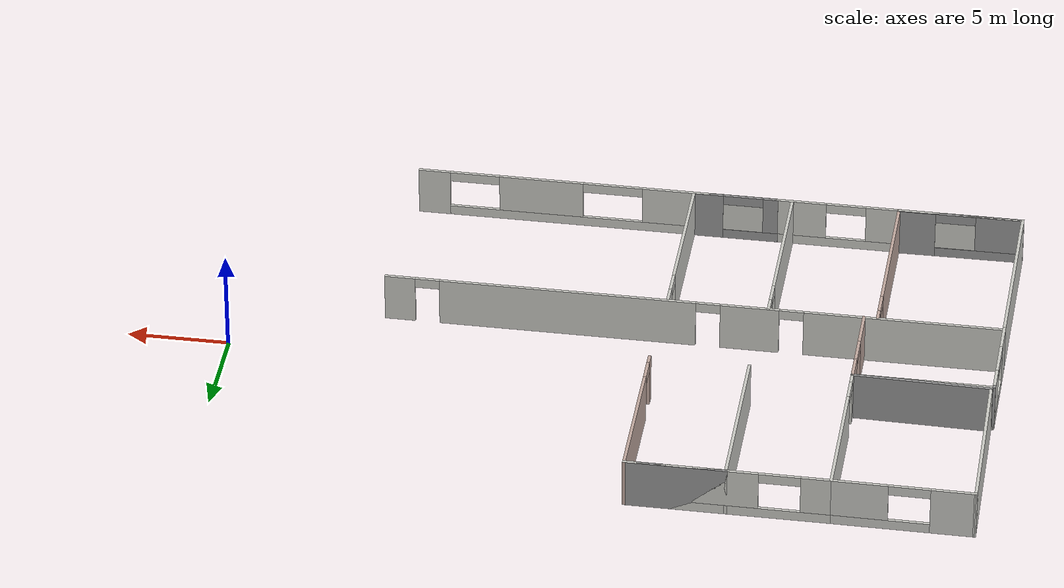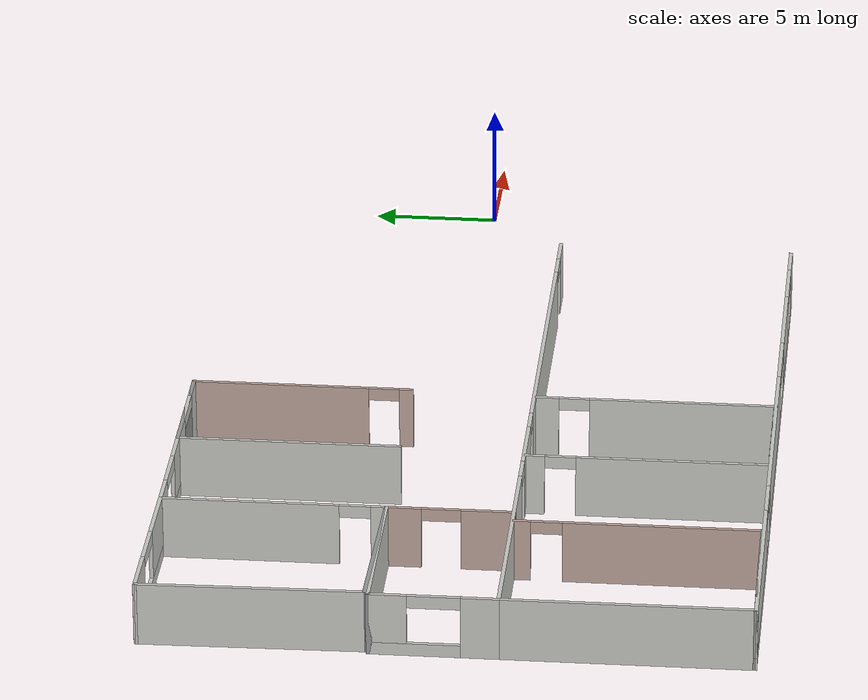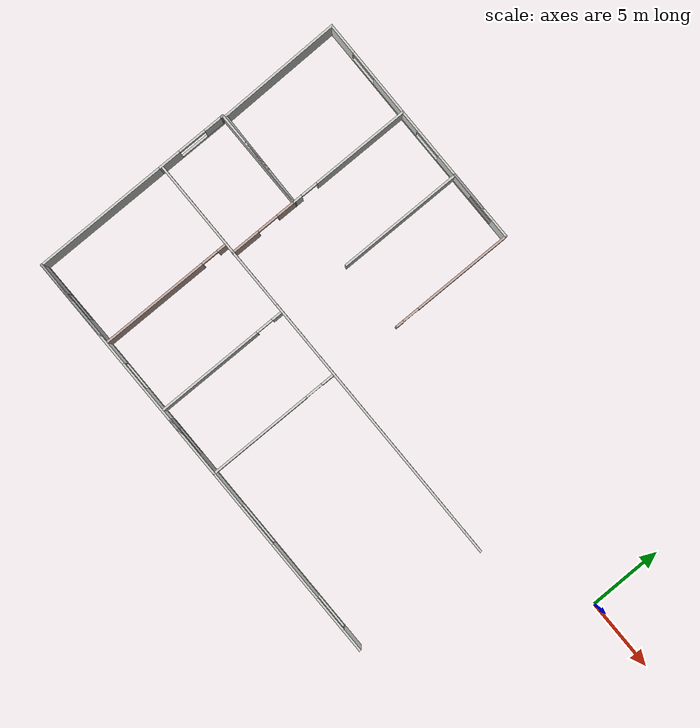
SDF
<sdf version="1.7">
 <model name="cps_lab_layout">
  <pose>-18.5957 3.28943 0 0 -0 0</pose>
  <link name="Wall_100">
   <pose>-12.2949 2.50022 0 0 -0 -1.5708</pose>
   <visual name="Wall_100_Visual_0">
    <pose>-0.931567 0 1.25 0 -0 0</pose>
    <geometry><box><size>6.88687 0.15 2.5</size></box></geometry>
    <material>
     <script><uri>file://media/materials/scripts/gazebo.material</uri><name>Gazebo/CeilingTiled</name></script>
     <ambient>0.760784 0.662745 0.627451 1</ambient>
    </material>
    <meta><layer>0</layer></meta>
   </visual>
   <collision name="Wall_100_Collision_0">
    <geometry><box><size>6.88687 0.15 2.5</size></box></geometry>
    <pose>-0.931567 0 1.25 0 -0 0</pose>
   </collision>
   <visual name="Wall_100_Visual_1">
    <pose>4.04343 0 1.25 0 -0 0</pose>
    <geometry><box><size>0.663135 0.15 2.5</size></box></geometry>
    <material>
     <script><uri>file://media/materials/scripts/gazebo.material</uri><name>Gazebo/CeilingTiled</name></script>
     <ambient>0.760784 0.662745 0.627451 1</ambient>
    </material>
    <meta><layer>0</layer></meta>
   </visual>
   <collision name="Wall_100_Collision_1">
    <geometry><box><size>0.663135 0.15 2.5</size></box></geometry>
    <pose>4.04343 0 1.25 0 -0 0</pose>
   </collision>
   <visual name="Wall_100_Visual_2">
    <pose>3.11186 0 2.25 0 -0 0</pose>
    <geometry><box><size>1.2 0.15 0.5</size></box></geometry>
    <material>
     <script><uri>file://media/materials/scripts/gazebo.material</uri><name>Gazebo/CeilingTiled</name></script>
     <ambient>0.760784 0.662745 0.627451 1</ambient>
    </material>
    <meta><layer>0</layer></meta>
   </visual>
   <collision name="Wall_100_Collision_2">
    <geometry><box><size>1.2 0.15 0.5</size></box></geometry>
    <pose>3.11186 0 2.25 0 -0 0</pose>
   </collision>
  </link>
  <link name="Wall_101">
   <collision name="Wall_101_Collision">
    <geometry><box><size>6.85618 0.15 2.5</size></box></geometry>
    <pose>0 0 1.25 0 -0 0</pose>
   </collision>
   <visual name="Wall_101_Visual">
    <pose>0 0 1.25 0 -0 0</pose>
    <geometry><box><size>6.85618 0.15 2.5</size></box></geometry>
    <material>
     <script><uri>file://media/materials/scripts/gazebo.material</uri><name>Gazebo/Grey</name></script>
     <ambient>1 1 1 1</ambient>
    </material>
    <meta><layer>0</layer></meta>
   </visual>
   <pose>-15.6474 -1.7341 0 0 -0 3.122</pose>
  </link>
  <link name="Wall_102">
   <collision name="Wall_102_Collision">
    <geometry><box><size>8.6581 0.15 2.5</size></box></geometry>
    <pose>0 0 1.25 0 -0 0</pose>
   </collision>
   <visual name="Wall_102_Visual">
    <pose>0 0 1.25 0 -0 0</pose>
    <geometry><box><size>8.6581 0.15 2.5</size></box></geometry>
    <material>
     <script><uri>file://media/materials/scripts/gazebo.material</uri><name>Gazebo/CeilingTiled</name></script>
     <ambient>0.760784 0.662745 0.627451 1</ambient>
    </material>
    <meta><layer>0</layer></meta>
   </visual>
   <pose>-19.0696 2.58506 0 0 -0 1.5872</pose>
  </link>
  <link name="Wall_103">
   <pose>-15.7172 6.81938 0 0 -0 -0.005598</pose>
   <visual name="Wall_103_Visual_0">
    <pose>-2.39687 0 1.25 0 -0 0</pose>
    <geometry><box><size>2.20111 0.15 2.5</size></box></geometry>
    <material>
     <script><uri>file://media/materials/scripts/gazebo.material</uri><name>Gazebo/CeilingTiled</name></script>
     <ambient>1 1 1 1</ambient>
    </material>
    <meta><layer>0</layer></meta>
   </visual>
   <collision name="Wall_103_Collision_0">
    <geometry><box><size>2.20111 0.15 2.5</size></box></geometry>
    <pose>-2.39687 0 1.25 0 -0 0</pose>
   </collision>
   <visual name="Wall_103_Visual_1">
    <pose>1.10056 0 0.25 0 -0 0</pose>
    <geometry><box><size>4.79374 0.15 0.5</size></box></geometry>
    <material>
     <script><uri>file://media/materials/scripts/gazebo.material</uri><name>Gazebo/CeilingTiled</name></script>
     <ambient>1 1 1 1</ambient>
    </material>
    <meta><layer>0</layer></meta>
   </visual>
   <collision name="Wall_103_Collision_1">
    <geometry><box><size>4.79374 0.15 0.5</size></box></geometry>
    <pose>1.10056 0 0.25 0 -0 0</pose>
   </collision>
   <visual name="Wall_103_Visual_2">
    <pose>2.10056 0 1.5 0 -0 0</pose>
    <geometry><box><size>2.79374 0.15 2</size></box></geometry>
    <material>
     <script><uri>file://media/materials/scripts/gazebo.material</uri><name>Gazebo/CeilingTiled</name></script>
     <ambient>1 1 1 1</ambient>
    </material>
    <meta><layer>0</layer></meta>
   </visual>
   <collision name="Wall_103_Collision_2">
    <geometry><box><size>2.79374 0.15 2</size></box></geometry>
    <pose>2.10056 0 1.5 0 -0 0</pose>
   </collision>
   <visual name="Wall_103_Visual_3">
    <pose>-0.296315 0 2.25 0 -0 0</pose>
    <geometry><box><size>2 0.15 0.5</size></box></geometry>
    <material>
     <script><uri>file://media/materials/scripts/gazebo.material</uri><name>Gazebo/CeilingTiled</name></script>
     <ambient>1 1 1 1</ambient>
    </material>
    <meta><layer>0</layer></meta>
   </visual>
   <collision name="Wall_103_Collision_3">
    <geometry><box><size>2 0.15 0.5</size></box></geometry>
    <pose>-0.296315 0 2.25 0 -0 0</pose>
   </collision>
  </link>
  <link name="Wall_104">
   <pose>-12.2949 -4.22478 0 0 -0 -1.5708</pose>
   <visual name="Wall_104_Visual_0">
    <pose>-1.79575 0 1.25 0 -0 0</pose>
    <geometry><box><size>1.40849 0.15 2.5</size></box></geometry>
    <material>
     <script><uri>file://media/materials/scripts/gazebo.material</uri><name>Gazebo/Grey</name></script>
     <ambient>0.760784 0.662745 0.627451 1</ambient>
    </material>
    <meta><layer>0</layer></meta>
   </visual>
   <collision name="Wall_104_Collision_0">
    <geometry><box><size>1.40849 0.15 2.5</size></box></geometry>
    <pose>-1.79575 0 1.25 0 -0 0</pose>
   </collision>
   <visual name="Wall_104_Visual_1">
    <pose>1.45425 0 1.25 0 -0 0</pose>
    <geometry><box><size>2.09151 0.15 2.5</size></box></geometry>
    <material>
     <script><uri>file://media/materials/scripts/gazebo.material</uri><name>Gazebo/Grey</name></script>
     <ambient>0.760784 0.662745 0.627451 1</ambient>
    </material>
    <meta><layer>0</layer></meta>
   </visual>
   <collision name="Wall_104_Collision_1">
    <geometry><box><size>2.09151 0.15 2.5</size></box></geometry>
    <pose>1.45425 0 1.25 0 -0 0</pose>
   </collision>
   <visual name="Wall_104_Visual_2">
    <pose>-0.34151 0 2.25 0 -0 0</pose>
    <geometry><box><size>1.5 0.15 0.5</size></box></geometry>
    <material>
     <script><uri>file://media/materials/scripts/gazebo.material</uri><name>Gazebo/Grey</name></script>
     <ambient>0.760784 0.662745 0.627451 1</ambient>
    </material>
    <meta><layer>0</layer></meta>
   </visual>
   <collision name="Wall_104_Collision_2">
    <geometry><box><size>1.5 0.15 0.5</size></box></geometry>
    <pose>-0.34151 0 2.25 0 -0 0</pose>
   </collision>
  </link>
  <link name="Wall_106">
   <pose>-19.1333 -4.32604 0 0 -0 1.5708</pose>
   <visual name="Wall_106_Visual_0">
    <pose>-1.70451 0 1.25 0 -0 0</pose>
    <geometry><box><size>1.59098 0.15 2.5</size></box></geometry>
    <material>
     <script><uri>file://media/materials/scripts/gazebo.material</uri><name>Gazebo/CeilingTiled</name></script>
     <ambient>0.760784 0.662745 0.627451 1</ambient>
    </material>
    <meta><layer>0</layer></meta>
   </visual>
   <collision name="Wall_106_Collision_0">
    <geometry><box><size>1.59098 0.15 2.5</size></box></geometry>
    <pose>-1.70451 0 1.25 0 -0 0</pose>
   </collision>
   <visual name="Wall_106_Visual_1">
    <pose>0.795491 0 0.25 0 -0 0</pose>
    <geometry><box><size>3.40902 0.15 0.5</size></box></geometry>
    <material>
     <script><uri>file://media/materials/scripts/gazebo.material</uri><name>Gazebo/CeilingTiled</name></script>
     <ambient>0.760784 0.662745 0.627451 1</ambient>
    </material>
    <meta><layer>0</layer></meta>
   </visual>
   <collision name="Wall_106_Collision_1">
    <geometry><box><size>3.40902 0.15 0.5</size></box></geometry>
    <pose>0.795491 0 0.25 0 -0 0</pose>
   </collision>
   <visual name="Wall_106_Visual_2">
    <pose>1.79549 0 1.5 0 -0 0</pose>
    <geometry><box><size>1.40902 0.15 2</size></box></geometry>
    <material>
     <script><uri>file://media/materials/scripts/gazebo.material</uri><name>Gazebo/CeilingTiled</name></script>
     <ambient>0.760784 0.662745 0.627451 1</ambient>
    </material>
    <meta><layer>0</layer></meta>
   </visual>
   <collision name="Wall_106_Collision_2">
    <geometry><box><size>1.40902 0.15 2</size></box></geometry>
    <pose>1.79549 0 1.5 0 -0 0</pose>
   </collision>
   <visual name="Wall_106_Visual_3">
    <pose>0.090982 0 2.25 0 -0 0</pose>
    <geometry><box><size>2 0.15 0.5</size></box></geometry>
    <material>
     <script><uri>file://media/materials/scripts/gazebo.material</uri><name>Gazebo/CeilingTiled</name></script>
     <ambient>0.760784 0.662745 0.627451 1</ambient>
    </material>
    <meta><layer>0</layer></meta>
   </visual>
   <collision name="Wall_106_Collision_3">
    <geometry><box><size>2 0.15 0.5</size></box></geometry>
    <pose>0.090982 0 2.25 0 -0 0</pose>
   </collision>
  </link>
  <link name="Wall_107">
   <collision name="Wall_107_Collision">
    <geometry><box><size>0.15 0.15 2.5</size></box></geometry>
    <pose>0 0 1.25 0 -0 0</pose>
   </collision>
   <visual name="Wall_107_Visual">
    <pose>0 0 1.25 0 -0 0</pose>
    <geometry><box><size>0.15 0.15 2.5</size></box></geometry>
    <material>
     <script><uri>file://media/materials/scripts/gazebo.material</uri><name>Gazebo/Grey</name></script>
     <ambient>1 1 1 1</ambient>
    </material>
    <meta><layer>0</layer></meta>
   </visual>
   <pose>-19.1333 -1.90104 0 0 -0 0</pose>
  </link>
  <link name="Wall_108">
   <collision name="Wall_108_Collision">
    <geometry><box><size>0.15 0.15 2.5</size></box></geometry>
    <pose>0 0 1.25 0 -0 0</pose>
   </collision>
   <visual name="Wall_108_Visual">
    <pose>0 0 1.25 0 -0 0</pose>
    <geometry><box><size>0.15 0.15 2.5</size></box></geometry>
    <material>
     <script><uri>file://media/materials/scripts/gazebo.material</uri><name>Gazebo/Grey</name></script>
     <ambient>1 1 1 1</ambient>
    </material>
    <meta><layer>0</layer></meta>
   </visual>
   <pose>-19.1333 -1.90104 0 0 -0 0</pose>
  </link>
  <link name="Wall_109">
   <collision name="Wall_109_Collision">
    <geometry><box><size>0.25 0.15 2.5</size></box></geometry>
    <pose>0 0 1.25 0 -0 0</pose>
   </collision>
   <visual name="Wall_109_Visual">
    <pose>0 0 1.25 0 -0 0</pose>
    <geometry><box><size>0.25 0.15 2.5</size></box></geometry>
    <material>
     <script><uri>file://media/materials/scripts/gazebo.material</uri><name>Gazebo/Grey</name></script>
     <ambient>1 1 1 1</ambient>
    </material>
    <meta><layer>0</layer></meta>
   </visual>
   <pose>-19.1333 -1.85104 0 0 -0 1.5708</pose>
  </link>
  <link name="Wall_110">
   <collision name="Wall_110_Collision">
    <geometry><box><size>6.98839 0.15 2.5</size></box></geometry>
    <pose>0 0 1.25 0 -0 0</pose>
   </collision>
   <visual name="Wall_110_Visual">
    <pose>0 0 1.25 0 -0 0</pose>
    <geometry><box><size>6.98839 0.15 2.5</size></box></geometry>
    <material>
     <script><uri>file://media/materials/scripts/gazebo.material</uri><name>Gazebo/CeilingTiled</name></script>
     <ambient>0.760784 0.662745 0.627451 1</ambient>
    </material>
    <meta><layer>0</layer></meta>
   </visual>
   <pose>-15.7141 -1.80041 0 0 -0 0.000184</pose>
  </link>
  <link name="Wall_78">
   <pose>-3.8734 -6.63637 0 0 -0 3.14159</pose>
   <visual name="Wall_78_Visual_0">
    <pose>-14.4896 0 1.25 0 -0 0</pose>
    <geometry><box><size>1.52082 0.15 2.5</size></box></geometry>
    <material>
     <script><uri>file://media/materials/scripts/gazebo.material</uri><name>Gazebo/CeilingTiled</name></script>
     <ambient>0.760784 0.662745 0.627451 1</ambient>
    </material>
    <meta><layer>0</layer></meta>
   </visual>
   <collision name="Wall_78_Collision_0">
    <geometry><box><size>1.52082 0.15 2.5</size></box></geometry>
    <pose>-14.4896 0 1.25 0 -0 0</pose>
   </collision>
   <visual name="Wall_78_Visual_1">
    <pose>-6.18137 0 1.25 0 -0 0</pose>
    <geometry><box><size>12.6956 0.15 2.5</size></box></geometry>
    <material>
     <script><uri>file://media/materials/scripts/gazebo.material</uri><name>Gazebo/CeilingTiled</name></script>
     <ambient>0.760784 0.662745 0.627451 1</ambient>
    </material>
    <meta><layer>0</layer></meta>
   </visual>
   <collision name="Wall_78_Collision_1">
    <geometry><box><size>12.6956 0.15 2.5</size></box></geometry>
    <pose>-6.18137 0 1.25 0 -0 0</pose>
   </collision>
   <visual name="Wall_78_Visual_2">
    <pose>2.81725 0 1.25 0 -0 0</pose>
    <geometry><box><size>2.90164 0.15 2.5</size></box></geometry>
    <material>
     <script><uri>file://media/materials/scripts/gazebo.material</uri><name>Gazebo/CeilingTiled</name></script>
     <ambient>0.760784 0.662745 0.627451 1</ambient>
    </material>
    <meta><layer>0</layer></meta>
   </visual>
   <collision name="Wall_78_Collision_2">
    <geometry><box><size>2.90164 0.15 2.5</size></box></geometry>
    <pose>2.81725 0 1.25 0 -0 0</pose>
   </collision>
   <visual name="Wall_78_Visual_3">
    <pose>10.359 0 1.25 0 -0 0</pose>
    <geometry><box><size>9.78192 0.15 2.5</size></box></geometry>
    <material>
     <script><uri>file://media/materials/scripts/gazebo.material</uri><name>Gazebo/CeilingTiled</name></script>
     <ambient>0.760784 0.662745 0.627451 1</ambient>
    </material>
    <meta><layer>0</layer></meta>
   </visual>
   <collision name="Wall_78_Collision_3">
    <geometry><box><size>9.78192 0.15 2.5</size></box></geometry>
    <pose>10.359 0 1.25 0 -0 0</pose>
   </collision>
   <visual name="Wall_78_Visual_4">
    <pose>-13.1292 0 2.25 0 -0 0</pose>
    <geometry><box><size>1.2 0.15 0.5</size></box></geometry>
    <material>
     <script><uri>file://media/materials/scripts/gazebo.material</uri><name>Gazebo/CeilingTiled</name></script>
     <ambient>0.760784 0.662745 0.627451 1</ambient>
    </material>
    <meta><layer>0</layer></meta>
   </visual>
   <collision name="Wall_78_Collision_4">
    <geometry><box><size>1.2 0.15 0.5</size></box></geometry>
    <pose>-13.1292 0 2.25 0 -0 0</pose>
   </collision>
   <visual name="Wall_78_Visual_5">
    <pose>0.766434 0 2.25 0 -0 0</pose>
    <geometry><box><size>1.2 0.15 0.5</size></box></geometry>
    <material>
     <script><uri>file://media/materials/scripts/gazebo.material</uri><name>Gazebo/CeilingTiled</name></script>
     <ambient>0.760784 0.662745 0.627451 1</ambient>
    </material>
    <meta><layer>0</layer></meta>
   </visual>
   <collision name="Wall_78_Collision_5">
    <geometry><box><size>1.2 0.15 0.5</size></box></geometry>
    <pose>0.766434 0 2.25 0 -0 0</pose>
   </collision>
   <visual name="Wall_78_Visual_6">
    <pose>4.86808 0 2.25 0 -0 0</pose>
    <geometry><box><size>1.2 0.15 0.5</size></box></geometry>
    <material>
     <script><uri>file://media/materials/scripts/gazebo.material</uri><name>Gazebo/CeilingTiled</name></script>
     <ambient>0.760784 0.662745 0.627451 1</ambient>
    </material>
    <meta><layer>0</layer></meta>
   </visual>
   <collision name="Wall_78_Collision_6">
    <geometry><box><size>1.2 0.15 0.5</size></box></geometry>
    <pose>4.86808 0 2.25 0 -0 0</pose>
   </collision>
  </link>
  <link name="Wall_79">
   <pose>-3.95831 -16.101 0 0 -0 3.14159</pose>
   <visual name="Wall_79_Visual_0">
    <pose>-14.447 0 1.25 0 -0 0</pose>
    <geometry><box><size>1.606 0.15 2.5</size></box></geometry>
    <material>
     <script><uri>file://media/materials/scripts/gazebo.material</uri><name>Gazebo/CeilingTiled</name></script>
     <ambient>0.760784 0.662745 0.627451 1</ambient>
    </material>
    <meta><layer>0</layer></meta>
   </visual>
   <collision name="Wall_79_Collision_0">
    <geometry><box><size>1.606 0.15 2.5</size></box></geometry>
    <pose>-14.447 0 1.25 0 -0 0</pose>
   </collision>
   <visual name="Wall_79_Visual_1">
    <pose>0.803 0 0.25 0 -0 0</pose>
    <geometry><box><size>28.894 0.15 0.5</size></box></geometry>
    <material>
     <script><uri>file://media/materials/scripts/gazebo.material</uri><name>Gazebo/CeilingTiled</name></script>
     <ambient>0.760784 0.662745 0.627451 1</ambient>
    </material>
    <meta><layer>0</layer></meta>
   </visual>
   <collision name="Wall_79_Collision_1">
    <geometry><box><size>28.894 0.15 0.5</size></box></geometry>
    <pose>0.803 0 0.25 0 -0 0</pose>
   </collision>
   <visual name="Wall_79_Visual_2">
    <pose>-9.01853 0 1.5 0 -0 0</pose>
    <geometry><box><size>4.25094 0.15 2</size></box></geometry>
    <material>
     <script><uri>file://media/materials/scripts/gazebo.material</uri><name>Gazebo/CeilingTiled</name></script>
     <ambient>0.760784 0.662745 0.627451 1</ambient>
    </material>
    <meta><layer>0</layer></meta>
   </visual>
   <collision name="Wall_79_Collision_2">
    <geometry><box><size>4.25094 0.15 2</size></box></geometry>
    <pose>-9.01853 0 1.5 0 -0 0</pose>
   </collision>
   <visual name="Wall_79_Visual_3">
    <pose>0.731796 0 1.5 0 -0 0</pose>
    <geometry><box><size>9.24971 0.15 2</size></box></geometry>
    <material>
     <script><uri>file://media/materials/scripts/gazebo.material</uri><name>Gazebo/CeilingTiled</name></script>
     <ambient>0.760784 0.662745 0.627451 1</ambient>
    </material>
    <meta><layer>0</layer></meta>
   </visual>
   <collision name="Wall_79_Collision_3">
    <geometry><box><size>9.24971 0.15 2</size></box></geometry>
    <pose>0.731796 0 1.5 0 -0 0</pose>
   </collision>
   <visual name="Wall_79_Visual_4">
    <pose>11.3033 0 1.5 0 -0 0</pose>
    <geometry><box><size>7.89335 0.15 2</size></box></geometry>
    <material>
     <script><uri>file://media/materials/scripts/gazebo.material</uri><name>Gazebo/CeilingTiled</name></script>
     <ambient>0.760784 0.662745 0.627451 1</ambient>
    </material>
    <meta><layer>0</layer></meta>
   </visual>
   <collision name="Wall_79_Collision_4">
    <geometry><box><size>7.89335 0.15 2</size></box></geometry>
    <pose>11.3033 0 1.5 0 -0 0</pose>
   </collision>
   <visual name="Wall_79_Visual_5">
    <pose>-12.394 0 2.25 0 -0 0</pose>
    <geometry><box><size>2.5 0.15 0.5</size></box></geometry>
    <material>
     <script><uri>file://media/materials/scripts/gazebo.material</uri><name>Gazebo/CeilingTiled</name></script>
     <ambient>0.760784 0.662745 0.627451 1</ambient>
    </material>
    <meta><layer>0</layer></meta>
   </visual>
   <collision name="Wall_79_Collision_5">
    <geometry><box><size>2.5 0.15 0.5</size></box></geometry>
    <pose>-12.394 0 2.25 0 -0 0</pose>
   </collision>
   <visual name="Wall_79_Visual_6">
    <pose>-5.39306 0 2.25 0 -0 0</pose>
    <geometry><box><size>3 0.15 0.5</size></box></geometry>
    <material>
     <script><uri>file://media/materials/scripts/gazebo.material</uri><name>Gazebo/CeilingTiled</name></script>
     <ambient>0.760784 0.662745 0.627451 1</ambient>
    </material>
    <meta><layer>0</layer></meta>
   </visual>
   <collision name="Wall_79_Collision_6">
    <geometry><box><size>3 0.15 0.5</size></box></geometry>
    <pose>-5.39306 0 2.25 0 -0 0</pose>
   </collision>
   <visual name="Wall_79_Visual_7">
    <pose>6.35665 0 2.25 0 -0 0</pose>
    <geometry><box><size>2 0.15 0.5</size></box></geometry>
    <material>
     <script><uri>file://media/materials/scripts/gazebo.material</uri><name>Gazebo/CeilingTiled</name></script>
     <ambient>0.760784 0.662745 0.627451 1</ambient>
    </material>
    <meta><layer>0</layer></meta>
   </visual>
   <collision name="Wall_79_Collision_7">
    <geometry><box><size>2 0.15 0.5</size></box></geometry>
    <pose>6.35665 0 2.25 0 -0 0</pose>
   </collision>
  </link>
  <link name="Wall_83">
   <pose>-2.64934 -11.4153 0 0 -0 -1.5708</pose>
   <visual name="Wall_83_Visual_0">
    <pose>-4.27752 0 1.25 0 -0 0</pose>
    <geometry><box><size>0.944957 0.15 2.5</size></box></geometry>
    <material>
     <script><uri>file://media/materials/scripts/gazebo.material</uri><name>Gazebo/CeilingTiled</name></script>
     <ambient>0.760784 0.662745 0.627451 1</ambient>
    </material>
    <meta><layer>0</layer></meta>
   </visual>
   <collision name="Wall_83_Collision_0">
    <geometry><box><size>0.944957 0.15 2.5</size></box></geometry>
    <pose>-4.27752 0 1.25 0 -0 0</pose>
   </collision>
   <visual name="Wall_83_Visual_1">
    <pose>1.07248 0 1.25 0 -0 0</pose>
    <geometry><box><size>7.35504 0.15 2.5</size></box></geometry>
    <material>
     <script><uri>file://media/materials/scripts/gazebo.material</uri><name>Gazebo/CeilingTiled</name></script>
     <ambient>0.760784 0.662745 0.627451 1</ambient>
    </material>
    <meta><layer>0</layer></meta>
   </visual>
   <collision name="Wall_83_Collision_1">
    <geometry><box><size>7.35504 0.15 2.5</size></box></geometry>
    <pose>1.07248 0 1.25 0 -0 0</pose>
   </collision>
   <visual name="Wall_83_Visual_2">
    <pose>-3.20504 0 2.25 0 -0 0</pose>
    <geometry><box><size>1.2 0.15 0.5</size></box></geometry>
    <material>
     <script><uri>file://media/materials/scripts/gazebo.material</uri><name>Gazebo/CeilingTiled</name></script>
     <ambient>0.760784 0.662745 0.627451 1</ambient>
    </material>
    <meta><layer>0</layer></meta>
   </visual>
   <collision name="Wall_83_Collision_2">
    <geometry><box><size>1.2 0.15 0.5</size></box></geometry>
    <pose>-3.20504 0 2.25 0 -0 0</pose>
   </collision>
  </link>
  <link name="Wall_84">
   <pose>-4.73452 -16.0903 0 0 -0 3.14159</pose>
   <visual name="Wall_84_Visual_0">
    <pose>-1.37569 0 1.25 0 -0 0</pose>
    <geometry><box><size>1.56897 0.15 2.5</size></box></geometry>
    <material>
     <script><uri>file://media/materials/scripts/gazebo.material</uri><name>Gazebo/Grey</name></script>
     <ambient>1 1 1 1</ambient>
    </material>
    <meta><layer>0</layer></meta>
   </visual>
   <collision name="Wall_84_Collision_0">
    <geometry><box><size>1.56897 0.15 2.5</size></box></geometry>
    <pose>-1.37569 0 1.25 0 -0 0</pose>
   </collision>
   <visual name="Wall_84_Visual_1">
    <pose>0.784487 0 0.25 0 -0 0</pose>
    <geometry><box><size>2.75138 0.15 0.5</size></box></geometry>
    <material>
     <script><uri>file://media/materials/scripts/gazebo.material</uri><name>Gazebo/Grey</name></script>
     <ambient>1 1 1 1</ambient>
    </material>
    <meta><layer>0</layer></meta>
   </visual>
   <collision name="Wall_84_Collision_1">
    <geometry><box><size>2.75138 0.15 0.5</size></box></geometry>
    <pose>0.784487 0 0.25 0 -0 0</pose>
   </collision>
   <visual name="Wall_84_Visual_2">
    <pose>1.78449 0 1.5 0 -0 0</pose>
    <geometry><box><size>0.751384 0.15 2</size></box></geometry>
    <material>
     <script><uri>file://media/materials/scripts/gazebo.material</uri><name>Gazebo/Grey</name></script>
     <ambient>1 1 1 1</ambient>
    </material>
    <meta><layer>0</layer></meta>
   </visual>
   <collision name="Wall_84_Collision_2">
    <geometry><box><size>0.751384 0.15 2</size></box></geometry>
    <pose>1.78449 0 1.5 0 -0 0</pose>
   </collision>
   <visual name="Wall_84_Visual_3">
    <pose>0.408794 0 2.25 0 -0 0</pose>
    <geometry><box><size>2 0.15 0.5</size></box></geometry>
    <material>
     <script><uri>file://media/materials/scripts/gazebo.material</uri><name>Gazebo/Grey</name></script>
     <ambient>1 1 1 1</ambient>
    </material>
    <meta><layer>0</layer></meta>
   </visual>
   <collision name="Wall_84_Collision_3">
    <geometry><box><size>2 0.15 0.5</size></box></geometry>
    <pose>0.408794 0 2.25 0 -0 0</pose>
   </collision>
  </link>
  <link name="Wall_85">
   <pose>-7.6062 -11.3801 0 0 -0 1.5708</pose>
   <visual name="Wall_85_Visual_0">
    <pose>-1.00212 0 1.25 0 -0 0</pose>
    <geometry><box><size>7.49576 0.15 2.5</size></box></geometry>
    <material>
     <script><uri>file://media/materials/scripts/gazebo.material</uri><name>Gazebo/CeilingTiled</name></script>
     <ambient>0.760784 0.662745 0.627451 1</ambient>
    </material>
    <meta><layer>0</layer></meta>
   </visual>
   <collision name="Wall_85_Collision_0">
    <geometry><box><size>7.49576 0.15 2.5</size></box></geometry>
    <pose>-1.00212 0 1.25 0 -0 0</pose>
   </collision>
   <visual name="Wall_85_Visual_1">
    <pose>4.34788 0 1.25 0 -0 0</pose>
    <geometry><box><size>0.804242 0.15 2.5</size></box></geometry>
    <material>
     <script><uri>file://media/materials/scripts/gazebo.material</uri><name>Gazebo/CeilingTiled</name></script>
     <ambient>0.760784 0.662745 0.627451 1</ambient>
    </material>
    <meta><layer>0</layer></meta>
   </visual>
   <collision name="Wall_85_Collision_1">
    <geometry><box><size>0.804242 0.15 2.5</size></box></geometry>
    <pose>4.34788 0 1.25 0 -0 0</pose>
   </collision>
   <visual name="Wall_85_Visual_2">
    <pose>3.34576 0 2.25 0 -0 0</pose>
    <geometry><box><size>1.2 0.15 0.5</size></box></geometry>
    <material>
     <script><uri>file://media/materials/scripts/gazebo.material</uri><name>Gazebo/CeilingTiled</name></script>
     <ambient>0.760784 0.662745 0.627451 1</ambient>
    </material>
    <meta><layer>0</layer></meta>
   </visual>
   <collision name="Wall_85_Collision_2">
    <geometry><box><size>1.2 0.15 0.5</size></box></geometry>
    <pose>3.34576 0 2.25 0 -0 0</pose>
   </collision>
  </link>
  <link name="Wall_87">
   <pose>-12.9562 -11.3801 0 0 -0 -1.5708</pose>
   <visual name="Wall_87_Visual_0">
    <pose>-4.40065 0 1.25 0 -0 0</pose>
    <geometry><box><size>0.698706 0.15 2.5</size></box></geometry>
    <material>
     <script><uri>file://media/materials/scripts/gazebo.material</uri><name>Gazebo/Grey</name></script>
     <ambient>0.760784 0.662745 0.627451 1</ambient>
    </material>
    <meta><layer>0</layer></meta>
   </visual>
   <collision name="Wall_87_Collision_0">
    <geometry><box><size>0.698706 0.15 2.5</size></box></geometry>
    <pose>-4.40065 0 1.25 0 -0 0</pose>
   </collision>
   <visual name="Wall_87_Visual_1">
    <pose>0.949353 0 1.25 0 -0 0</pose>
    <geometry><box><size>7.60129 0.15 2.5</size></box></geometry>
    <material>
     <script><uri>file://media/materials/scripts/gazebo.material</uri><name>Gazebo/Grey</name></script>
     <ambient>0.760784 0.662745 0.627451 1</ambient>
    </material>
    <meta><layer>0</layer></meta>
   </visual>
   <collision name="Wall_87_Collision_1">
    <geometry><box><size>7.60129 0.15 2.5</size></box></geometry>
    <pose>0.949353 0 1.25 0 -0 0</pose>
   </collision>
   <visual name="Wall_87_Visual_2">
    <pose>-3.45129 0 2.25 0 -0 0</pose>
    <geometry><box><size>1.2 0.15 0.5</size></box></geometry>
    <material>
     <script><uri>file://media/materials/scripts/gazebo.material</uri><name>Gazebo/Grey</name></script>
     <ambient>0.760784 0.662745 0.627451 1</ambient>
    </material>
    <meta><layer>0</layer></meta>
   </visual>
   <collision name="Wall_87_Collision_2">
    <geometry><box><size>1.2 0.15 0.5</size></box></geometry>
    <pose>-3.45129 0 2.25 0 -0 0</pose>
   </collision>
  </link>
  <link name="Wall_88">
   <pose>-16.0448 -16.0781 0 0 -0 -3.13416</pose>
   <visual name="Wall_88_Visual_0">
    <pose>-2.20299 0 1.25 0 -0 0</pose>
    <geometry><box><size>1.92131 0.15 2.5</size></box></geometry>
    <material>
     <script><uri>file://media/materials/scripts/gazebo.material</uri><name>Gazebo/Grey</name></script>
     <ambient>1 1 1 1</ambient>
    </material>
    <meta><layer>0</layer></meta>
   </visual>
   <collision name="Wall_88_Collision_0">
    <geometry><box><size>1.92131 0.15 2.5</size></box></geometry>
    <pose>-2.20299 0 1.25 0 -0 0</pose>
   </collision>
   <visual name="Wall_88_Visual_1">
    <pose>0.960656 0 0.25 0 -0 0</pose>
    <geometry><box><size>4.40597 0.15 0.5</size></box></geometry>
    <material>
     <script><uri>file://media/materials/scripts/gazebo.material</uri><name>Gazebo/Grey</name></script>
     <ambient>1 1 1 1</ambient>
    </material>
    <meta><layer>0</layer></meta>
   </visual>
   <collision name="Wall_88_Collision_1">
    <geometry><box><size>4.40597 0.15 0.5</size></box></geometry>
    <pose>0.960656 0 0.25 0 -0 0</pose>
   </collision>
   <visual name="Wall_88_Visual_2">
    <pose>1.96066 0 1.5 0 -0 0</pose>
    <geometry><box><size>2.40598 0.15 2</size></box></geometry>
    <material>
     <script><uri>file://media/materials/scripts/gazebo.material</uri><name>Gazebo/Grey</name></script>
     <ambient>1 1 1 1</ambient>
    </material>
    <meta><layer>0</layer></meta>
   </visual>
   <collision name="Wall_88_Collision_2">
    <geometry><box><size>2.40598 0.15 2</size></box></geometry>
    <pose>1.96066 0 1.5 0 -0 0</pose>
   </collision>
   <visual name="Wall_88_Visual_3">
    <pose>-0.242332 0 2.25 0 -0 0</pose>
    <geometry><box><size>2 0.15 0.5</size></box></geometry>
    <material>
     <script><uri>file://media/materials/scripts/gazebo.material</uri><name>Gazebo/Grey</name></script>
     <ambient>1 1 1 1</ambient>
    </material>
    <meta><layer>0</layer></meta>
   </visual>
   <collision name="Wall_88_Collision_3">
    <geometry><box><size>2 0.15 0.5</size></box></geometry>
    <pose>-0.242332 0 2.25 0 -0 0</pose>
   </collision>
  </link>
  <link name="Wall_89">
   <collision name="Wall_89_Collision">
    <geometry><box><size>9.5 0.15 2.5</size></box></geometry>
    <pose>0 0 1.25 0 -0 0</pose>
   </collision>
   <visual name="Wall_89_Visual">
    <pose>0 0 1.25 0 -0 0</pose>
    <geometry><box><size>9.5 0.15 2.5</size></box></geometry>
    <material>
     <script><uri>file://media/materials/scripts/gazebo.material</uri><name>Gazebo/CeilingTiled</name></script>
     <ambient>0.760784 0.662745 0.627451 1</ambient>
    </material>
    <meta><layer>0</layer></meta>
   </visual>
   <pose>-19.1333 -11.426 0 0 -0 1.5708</pose>
  </link>
  <link name="Wall_95">
   <pose>-2.44492 2.50022 0 0 -0 -1.5708</pose>
   <visual name="Wall_95_Visual_0">
    <pose>-0.878799 0 1.25 0 -0 0</pose>
    <geometry><box><size>6.9924 0.15 2.5</size></box></geometry>
    <material>
     <script><uri>file://media/materials/scripts/gazebo.material</uri><name>Gazebo/Grey</name></script>
     <ambient>0.760784 0.662745 0.627451 1</ambient>
    </material>
    <meta><layer>0</layer></meta>
   </visual>
   <collision name="Wall_95_Collision_0">
    <geometry><box><size>6.9924 0.15 2.5</size></box></geometry>
    <pose>-0.878799 0 1.25 0 -0 0</pose>
   </collision>
   <visual name="Wall_95_Visual_1">
    <pose>4.0962 0 1.25 0 -0 0</pose>
    <geometry><box><size>0.557598 0.15 2.5</size></box></geometry>
    <material>
     <script><uri>file://media/materials/scripts/gazebo.material</uri><name>Gazebo/Grey</name></script>
     <ambient>0.760784 0.662745 0.627451 1</ambient>
    </material>
    <meta><layer>0</layer></meta>
   </visual>
   <collision name="Wall_95_Collision_1">
    <geometry><box><size>0.557598 0.15 2.5</size></box></geometry>
    <pose>4.0962 0 1.25 0 -0 0</pose>
   </collision>
   <visual name="Wall_95_Visual_2">
    <pose>3.2174 0 2.25 0 -0 0</pose>
    <geometry><box><size>1.2 0.15 0.5</size></box></geometry>
    <material>
     <script><uri>file://media/materials/scripts/gazebo.material</uri><name>Gazebo/Grey</name></script>
     <ambient>0.760784 0.662745 0.627451 1</ambient>
    </material>
    <meta><layer>0</layer></meta>
   </visual>
   <collision name="Wall_95_Collision_2">
    <geometry><box><size>1.2 0.15 0.5</size></box></geometry>
    <pose>3.2174 0 2.25 0 -0 0</pose>
   </collision>
  </link>
  <link name="Wall_97">
   <collision name="Wall_97_Collision">
    <geometry><box><size>8.75 0.15 2.5</size></box></geometry>
    <pose>0 0 1.25 0 -0 0</pose>
   </collision>
   <visual name="Wall_97_Visual">
    <pose>0 0 1.25 0 -0 0</pose>
    <geometry><box><size>8.75 0.15 2.5</size></box></geometry>
    <material>
     <script><uri>file://media/materials/scripts/gazebo.material</uri><name>Gazebo/CeilingTiled</name></script>
     <ambient>0.760784 0.662745 0.627451 1</ambient>
    </material>
    <meta><layer>0</layer></meta>
   </visual>
   <pose>-7.29493 2.50022 0 0 -0 1.5708</pose>
  </link>
  <link name="Wall_98">
   <collision name="Wall_98_Collision">
    <geometry><box><size>5 0.15 2.5</size></box></geometry>
    <pose>0 0 1.25 0 -0 0</pose>
   </collision>
   <visual name="Wall_98_Visual">
    <pose>0 0 1.25 0 -0 0</pose>
    <geometry><box><size>5 0.15 2.5</size></box></geometry>
    <material>
     <script><uri>file://media/materials/scripts/gazebo.material</uri><name>Gazebo/Grey</name></script>
     <ambient>1 1 1 1</ambient>
    </material>
    <meta><layer>0</layer></meta>
   </visual>
   <pose>-4.86992 6.80022 0 0 -0 0</pose>
  </link>
  <link name="Wall_99">
   <pose>-7.36992 6.80022 0 0 -0 3.14159</pose>
   <visual name="Wall_99_Visual_0">
    <pose>-4.32419 0 1.25 0 -0 0</pose>
    <geometry><box><size>1.35161 0.15 2.5</size></box></geometry>
    <material>
     <script><uri>file://media/materials/scripts/gazebo.material</uri><name>Gazebo/CeilingTiled</name></script>
     <ambient>0.760784 0.662745 0.627451 1</ambient>
    </material>
    <meta><layer>0</layer></meta>
   </visual>
   <collision name="Wall_99_Collision_0">
    <geometry><box><size>1.35161 0.15 2.5</size></box></geometry>
    <pose>-4.32419 0 1.25 0 -0 0</pose>
   </collision>
   <visual name="Wall_99_Visual_1">
    <pose>0.675807 0 0.25 0 -0 0</pose>
    <geometry><box><size>8.64839 0.15 0.5</size></box></geometry>
    <material>
     <script><uri>file://media/materials/scripts/gazebo.material</uri><name>Gazebo/CeilingTiled</name></script>
     <ambient>0.760784 0.662745 0.627451 1</ambient>
    </material>
    <meta><layer>0</layer></meta>
   </visual>
   <collision name="Wall_99_Collision_1">
    <geometry><box><size>8.64839 0.15 0.5</size></box></geometry>
    <pose>0.675807 0 0.25 0 -0 0</pose>
   </collision>
   <visual name="Wall_99_Visual_2">
    <pose>-0.080337 0 1.5 0 -0 0</pose>
    <geometry><box><size>3.1361 0.15 2</size></box></geometry>
    <material>
     <script><uri>file://media/materials/scripts/gazebo.material</uri><name>Gazebo/CeilingTiled</name></script>
     <ambient>0.760784 0.662745 0.627451 1</ambient>
    </material>
    <meta><layer>0</layer></meta>
   </visual>
   <collision name="Wall_99_Collision_2">
    <geometry><box><size>3.1361 0.15 2</size></box></geometry>
    <pose>-0.080337 0 1.5 0 -0 0</pose>
   </collision>
   <visual name="Wall_99_Visual_3">
    <pose>4.24386 0 1.5 0 -0 0</pose>
    <geometry><box><size>1.51229 0.15 2</size></box></geometry>
    <material>
     <script><uri>file://media/materials/scripts/gazebo.material</uri><name>Gazebo/CeilingTiled</name></script>
     <ambient>0.760784 0.662745 0.627451 1</ambient>
    </material>
    <meta><layer>0</layer></meta>
   </visual>
   <collision name="Wall_99_Collision_3">
    <geometry><box><size>1.51229 0.15 2</size></box></geometry>
    <pose>4.24386 0 1.5 0 -0 0</pose>
   </collision>
   <visual name="Wall_99_Visual_4">
    <pose>-2.64839 0 2.25 0 -0 0</pose>
    <geometry><box><size>2 0.15 0.5</size></box></geometry>
    <material>
     <script><uri>file://media/materials/scripts/gazebo.material</uri><name>Gazebo/CeilingTiled</name></script>
     <ambient>0.760784 0.662745 0.627451 1</ambient>
    </material>
    <meta><layer>0</layer></meta>
   </visual>
   <collision name="Wall_99_Collision_4">
    <geometry><box><size>2 0.15 0.5</size></box></geometry>
    <pose>-2.64839 0 2.25 0 -0 0</pose>
   </collision>
   <visual name="Wall_99_Visual_5">
    <pose>2.48771 0 2.25 0 -0 0</pose>
    <geometry><box><size>2 0.15 0.5</size></box></geometry>
    <material>
     <script><uri>file://media/materials/scripts/gazebo.material</uri><name>Gazebo/CeilingTiled</name></script>
     <ambient>0.760784 0.662745 0.627451 1</ambient>
    </material>
    <meta><layer>0</layer></meta>
   </visual>
   <collision name="Wall_99_Collision_5">
    <geometry><box><size>2 0.15 0.5</size></box></geometry>
    <pose>2.48771 0 2.25 0 -0 0</pose>
   </collision>
  </link>
  <static>1</static>
 </model>
</sdf>
